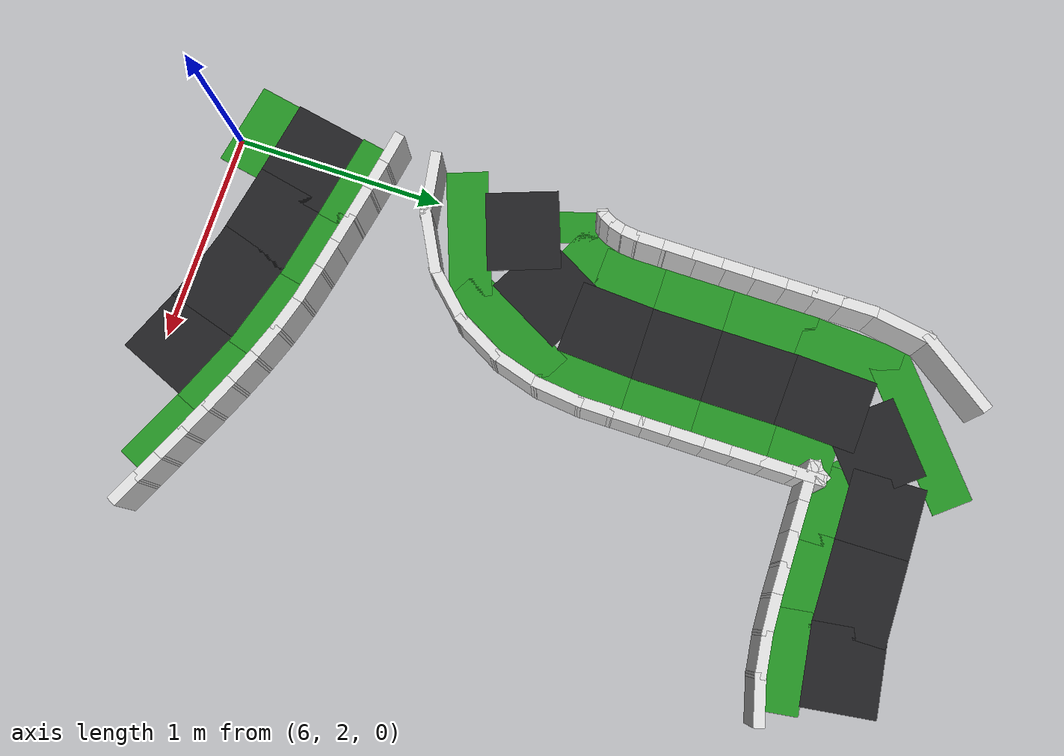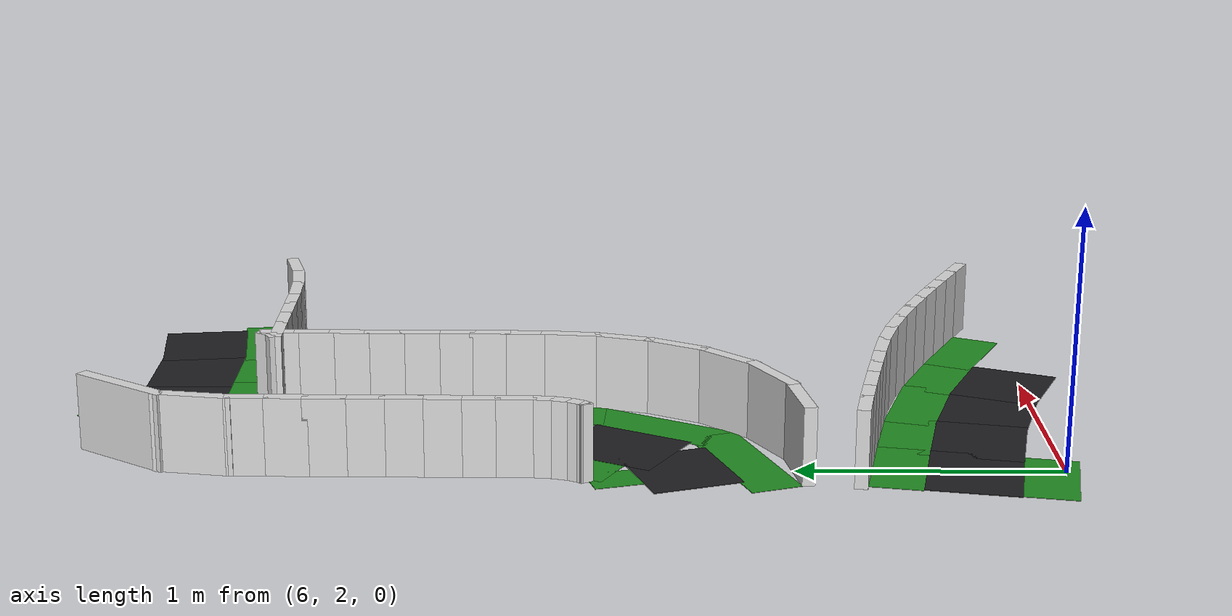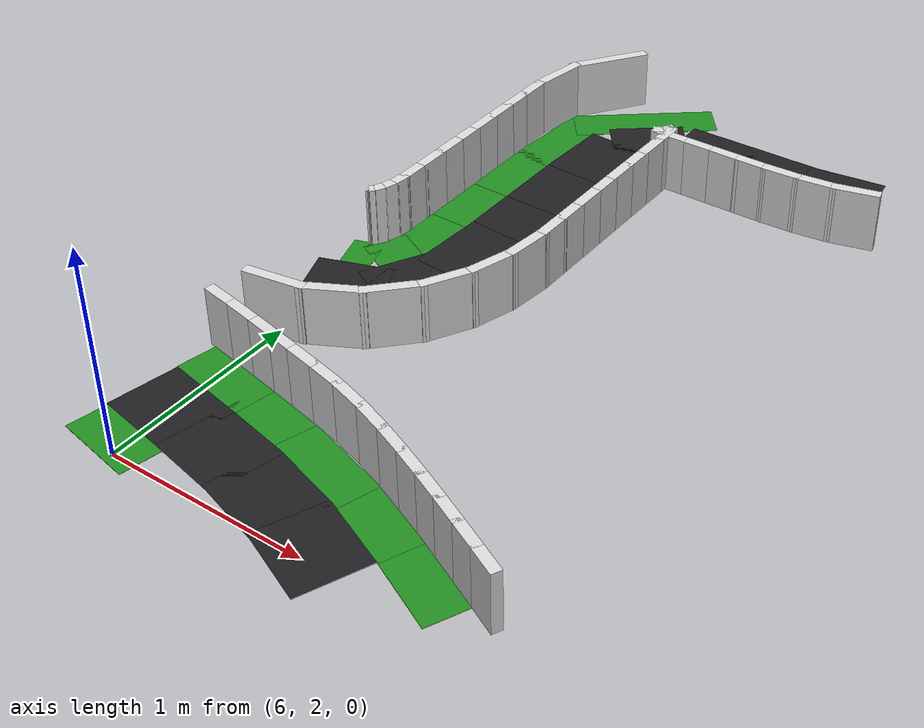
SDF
<sdf version="1.8">
 <world name="it_arena_track">
  <model name="it_arena_track_static">
   <static>true</static>
   <link name="surface_main_48">
    <pose>7.4886 5.4344 0.0015 0 0 -3.00326</pose>
    <collision name="surface_main_48_col">
     <geometry><box><size>0.3899 0.3500 0.0030</size></box></geometry>
    </collision>
    <visual name="surface_main_48_vis">
     <geometry><box><size>0.3899 0.3500 0.0030</size></box></geometry>
     <material><ambient>0.12 0.12 0.13 1</ambient><diffuse>0.12 0.12 0.13 1</diffuse></material>
    </visual>
   </link>
   <link name="surface_main_49">
    <pose>7.1408 5.4082 0.0015 0 0 -3.12609</pose>
    <collision name="surface_main_49_col">
     <geometry><box><size>0.4139 0.3500 0.0030</size></box></geometry>
    </collision>
    <visual name="surface_main_49_vis">
     <geometry><box><size>0.4139 0.3500 0.0030</size></box></geometry>
     <material><ambient>0.12 0.12 0.13 1</ambient><diffuse>0.12 0.12 0.13 1</diffuse></material>
    </visual>
   </link>
   <link name="surface_main_50">
    <pose>6.7909 5.4021 0.0015 0 0 -3.12223</pose>
    <collision name="surface_main_50_col">
     <geometry><box><size>0.3909 0.3500 0.0030</size></box></geometry>
    </collision>
    <visual name="surface_main_50_vis">
     <geometry><box><size>0.3909 0.3500 0.0030</size></box></geometry>
     <material><ambient>0.12 0.12 0.13 1</ambient><diffuse>0.12 0.12 0.13 1</diffuse></material>
    </visual>
   </link>
   <link name="surface_main_51">
    <pose>6.4899 5.2921 0.0015 0 0 -2.45833</pose>
    <collision name="surface_main_51_col">
     <geometry><box><size>0.3889 0.3500 0.0030</size></box></geometry>
    </collision>
    <visual name="surface_main_51_vis">
     <geometry><box><size>0.3889 0.3500 0.0030</size></box></geometry>
     <material><ambient>0.12 0.12 0.13 1</ambient><diffuse>0.12 0.12 0.13 1</diffuse></material>
    </visual>
   </link>
   <link name="surface_main_52">
    <pose>6.3519 5.0160 0.0015 0 0 -1.61126</pose>
    <collision name="surface_main_52_col">
     <geometry><box><size>0.3898 0.3500 0.0030</size></box></geometry>
    </collision>
    <visual name="surface_main_52_vis">
     <geometry><box><size>0.3898 0.3500 0.0030</size></box></geometry>
     <material><ambient>0.12 0.12 0.13 1</ambient><diffuse>0.12 0.12 0.13 1</diffuse></material>
    </visual>
   </link>
   <link name="surface_main_53">
    <pose>6.3450 4.6667 0.0015 0 0 -1.57080</pose>
    <collision name="surface_main_53_col">
     <geometry><box><size>0.4140 0.3500 0.0030</size></box></geometry>
    </collision>
    <visual name="surface_main_53_vis">
     <geometry><box><size>0.4140 0.3500 0.0030</size></box></geometry>
     <material><ambient>0.12 0.12 0.13 1</ambient><diffuse>0.12 0.12 0.13 1</diffuse></material>
    </visual>
   </link>
   <link name="surface_main_54">
    <pose>6.3450 4.3167 0.0015 0 0 -1.57080</pose>
    <collision name="surface_main_54_col">
     <geometry><box><size>0.3910 0.3500 0.0030</size></box></geometry>
    </collision>
    <visual name="surface_main_54_vis">
     <geometry><box><size>0.3910 0.3500 0.0030</size></box></geometry>
     <material><ambient>0.12 0.12 0.13 1</ambient><diffuse>0.12 0.12 0.13 1</diffuse></material>
    </visual>
   </link>
   <link name="surface_main_55">
    <pose>6.3351 3.9675 0.0015 0 0 -1.62589</pose>
    <collision name="surface_main_55_col">
     <geometry><box><size>0.4129 0.3500 0.0030</size></box></geometry>
    </collision>
    <visual name="surface_main_55_vis">
     <geometry><box><size>0.4129 0.3500 0.0030</size></box></geometry>
     <material><ambient>0.12 0.12 0.13 1</ambient><diffuse>0.12 0.12 0.13 1</diffuse></material>
    </visual>
   </link>
   <link name="surface_main_56">
    <pose>6.2413 3.6320 0.0015 0 0 -2.06382</pose>
    <collision name="surface_main_56_col">
     <geometry><box><size>0.4079 0.3500 0.0030</size></box></geometry>
    </collision>
    <visual name="surface_main_56_vis">
     <geometry><box><size>0.4079 0.3500 0.0030</size></box></geometry>
     <material><ambient>0.12 0.12 0.13 1</ambient><diffuse>0.12 0.12 0.13 1</diffuse></material>
    </visual>
   </link>
   <link name="surface_main_57">
    <pose>6.0016 3.4197 0.0015 0 0 -2.79601</pose>
    <collision name="surface_main_57_col">
     <geometry><box><size>0.3808 0.3500 0.0030</size></box></geometry>
    </collision>
    <visual name="surface_main_57_vis">
     <geometry><box><size>0.3808 0.3500 0.0030</size></box></geometry>
     <material><ambient>0.12 0.12 0.13 1</ambient><diffuse>0.12 0.12 0.13 1</diffuse></material>
    </visual>
   </link>
   <link name="surface_main_106">
    <pose>5.9840 2.3375 0.0015 0 0 -0.19005</pose>
    <collision name="surface_main_106_col">
     <geometry><box><size>0.4139 0.3500 0.0030</size></box></geometry>
    </collision>
    <visual name="surface_main_106_vis">
     <geometry><box><size>0.4139 0.3500 0.0030</size></box></geometry>
     <material><ambient>0.12 0.12 0.13 1</ambient><diffuse>0.12 0.12 0.13 1</diffuse></material>
    </visual>
   </link>
   <link name="surface_main_107">
    <pose>6.3271 2.2687 0.0015 0 0 -0.20604</pose>
    <collision name="surface_main_107_col">
     <geometry><box><size>0.3910 0.3500 0.0030</size></box></geometry>
    </collision>
    <visual name="surface_main_107_vis">
     <geometry><box><size>0.3910 0.3500 0.0030</size></box></geometry>
     <material><ambient>0.12 0.12 0.13 1</ambient><diffuse>0.12 0.12 0.13 1</diffuse></material>
    </visual>
   </link>
   <link name="surface_main_108">
    <pose>6.6656 2.1820 0.0015 0 0 -0.29323</pose>
    <collision name="surface_main_108_col">
     <geometry><box><size>0.4134 0.3500 0.0030</size></box></geometry>
    </collision>
    <visual name="surface_main_108_vis">
     <geometry><box><size>0.4134 0.3500 0.0030</size></box></geometry>
     <material><ambient>0.12 0.12 0.13 1</ambient><diffuse>0.12 0.12 0.13 1</diffuse></material>
    </visual>
   </link>
   <link name="surface_main_109">
    <pose>6.9943 2.0640 0.0015 0 0 -0.39922</pose>
    <collision name="surface_main_109_col">
     <geometry><box><size>0.3909 0.3500 0.0030</size></box></geometry>
    </collision>
    <visual name="surface_main_109_vis">
     <geometry><box><size>0.3909 0.3500 0.0030</size></box></geometry>
     <material><ambient>0.12 0.12 0.13 1</ambient><diffuse>0.12 0.12 0.13 1</diffuse></material>
    </visual>
   </link>
   <link name="grass_main_left_48">
    <pose>7.5335 5.1653 0.0010 0 0 -2.99863</pose>
    <collision name="grass_main_left_48_col">
     <geometry><box><size>0.4702 0.2000 0.0020</size></box></geometry>
    </collision>
    <visual name="grass_main_left_48_vis">
     <geometry><box><size>0.4702 0.2000 0.0020</size></box></geometry>
     <material><ambient>0.13 0.55 0.13 1</ambient><diffuse>0.13 0.55 0.13 1</diffuse></material>
    </visual>
   </link>
   <link name="grass_main_left_49">
    <pose>7.1477 5.1333 0.0010 0 0 -3.12590</pose>
    <collision name="grass_main_left_49_col">
     <geometry><box><size>0.4220 0.2000 0.0020</size></box></geometry>
    </collision>
    <visual name="grass_main_left_49_vis">
     <geometry><box><size>0.4220 0.2000 0.0020</size></box></geometry>
     <material><ambient>0.13 0.55 0.13 1</ambient><diffuse>0.13 0.55 0.13 1</diffuse></material>
    </visual>
   </link>
   <link name="grass_main_left_50">
    <pose>6.8045 5.1277 0.0010 0 0 -3.12412</pose>
    <collision name="grass_main_left_50_col">
     <geometry><box><size>0.3676 0.2000 0.0020</size></box></geometry>
    </collision>
    <visual name="grass_main_left_50_vis">
     <geometry><box><size>0.3676 0.2000 0.0020</size></box></geometry>
     <material><ambient>0.13 0.55 0.13 1</ambient><diffuse>0.13 0.55 0.13 1</diffuse></material>
    </visual>
   </link>
   <link name="grass_main_left_51">
    <pose>6.6333 5.1154 0.0010 0 0 -2.44620</pose>
    <collision name="grass_main_left_51_col">
     <geometry><box><size>0.0339 0.2000 0.0020</size></box></geometry>
    </collision>
    <visual name="grass_main_left_51_vis">
     <geometry><box><size>0.0339 0.2000 0.0020</size></box></geometry>
     <material><ambient>0.13 0.55 0.13 1</ambient><diffuse>0.13 0.55 0.13 1</diffuse></material>
    </visual>
   </link>
   <link name="grass_main_left_52">
    <pose>6.6210 4.9763 0.0010 0 0 -1.57856</pose>
    <collision name="grass_main_left_52_col">
     <geometry><box><size>0.2982 0.2000 0.0020</size></box></geometry>
    </collision>
    <visual name="grass_main_left_52_vis">
     <geometry><box><size>0.2982 0.2000 0.0020</size></box></geometry>
     <material><ambient>0.13 0.55 0.13 1</ambient><diffuse>0.13 0.55 0.13 1</diffuse></material>
    </visual>
   </link>
   <link name="grass_main_left_53">
    <pose>6.6200 4.6667 0.0010 0 0 -1.57080</pose>
    <collision name="grass_main_left_53_col">
     <geometry><box><size>0.4140 0.2000 0.0020</size></box></geometry>
    </collision>
    <visual name="grass_main_left_53_vis">
     <geometry><box><size>0.4140 0.2000 0.0020</size></box></geometry>
     <material><ambient>0.13 0.55 0.13 1</ambient><diffuse>0.13 0.55 0.13 1</diffuse></material>
    </visual>
   </link>
   <link name="grass_main_left_54">
    <pose>6.6200 4.3167 0.0010 0 0 -1.57080</pose>
    <collision name="grass_main_left_54_col">
     <geometry><box><size>0.3910 0.2000 0.0020</size></box></geometry>
    </collision>
    <visual name="grass_main_left_54_vis">
     <geometry><box><size>0.3910 0.2000 0.0020</size></box></geometry>
     <material><ambient>0.13 0.55 0.13 1</ambient><diffuse>0.13 0.55 0.13 1</diffuse></material>
    </visual>
   </link>
   <link name="grass_main_left_55">
    <pose>6.6069 3.9381 0.0010 0 0 -1.63334</pose>
    <collision name="grass_main_left_55_col">
     <geometry><box><size>0.4809 0.2000 0.0020</size></box></geometry>
    </collision>
    <visual name="grass_main_left_55_vis">
     <geometry><box><size>0.4809 0.2000 0.0020</size></box></geometry>
     <material><ambient>0.13 0.55 0.13 1</ambient><diffuse>0.13 0.55 0.13 1</diffuse></material>
    </visual>
   </link>
   <link name="grass_main_left_56">
    <pose>6.4691 3.5018 0.0010 0 0 -2.07217</pose>
    <collision name="grass_main_left_56_col">
     <geometry><box><size>0.5971 0.2000 0.0020</size></box></geometry>
    </collision>
    <visual name="grass_main_left_56_vis">
     <geometry><box><size>0.5971 0.2000 0.0020</size></box></geometry>
     <material><ambient>0.13 0.55 0.13 1</ambient><diffuse>0.13 0.55 0.13 1</diffuse></material>
    </visual>
   </link>
   <link name="grass_main_left_57">
    <pose>6.0961 3.1814 0.0010 0 0 -2.78400</pose>
    <collision name="grass_main_left_57_col">
     <geometry><box><size>0.6094 0.2000 0.0020</size></box></geometry>
    </collision>
    <visual name="grass_main_left_57_vis">
     <geometry><box><size>0.6094 0.2000 0.0020</size></box></geometry>
     <material><ambient>0.13 0.55 0.13 1</ambient><diffuse>0.13 0.55 0.13 1</diffuse></material>
    </visual>
   </link>
   <link name="grass_main_left_101">
    <pose>6.0351 2.6077 0.0010 0 0 -0.18998</pose>
    <collision name="grass_main_left_101_col">
     <geometry><box><size>0.4242 0.2000 0.0020</size></box></geometry>
    </collision>
    <visual name="grass_main_left_101_vis">
     <geometry><box><size>0.4242 0.2000 0.0020</size></box></geometry>
     <material><ambient>0.13 0.55 0.13 1</ambient><diffuse>0.13 0.55 0.13 1</diffuse></material>
    </visual>
   </link>
   <link name="grass_main_left_102">
    <pose>6.3835 2.5379 0.0010 0 0 -0.20604</pose>
    <collision name="grass_main_left_102_col">
     <geometry><box><size>0.3931 0.2000 0.0020</size></box></geometry>
    </collision>
    <visual name="grass_main_left_102_vis">
     <geometry><box><size>0.3931 0.2000 0.0020</size></box></geometry>
     <material><ambient>0.13 0.55 0.13 1</ambient><diffuse>0.13 0.55 0.13 1</diffuse></material>
    </visual>
   </link>
   <link name="grass_main_left_103">
    <pose>6.7434 2.4449 0.0010 0 0 -0.29267</pose>
    <collision name="grass_main_left_103_col">
     <geometry><box><size>0.4627 0.2000 0.0020</size></box></geometry>
    </collision>
    <visual name="grass_main_left_103_vis">
     <geometry><box><size>0.4627 0.2000 0.0020</size></box></geometry>
     <material><ambient>0.13 0.55 0.13 1</ambient><diffuse>0.13 0.55 0.13 1</diffuse></material>
    </visual>
   </link>
   <link name="grass_main_left_104">
    <pose>7.0999 2.3178 0.0010 0 0 -0.39901</pose>
    <collision name="grass_main_left_104_col">
     <geometry><box><size>0.4089 0.2000 0.0020</size></box></geometry>
    </collision>
    <visual name="grass_main_left_104_vis">
     <geometry><box><size>0.4089 0.2000 0.0020</size></box></geometry>
     <material><ambient>0.13 0.55 0.13 1</ambient><diffuse>0.13 0.55 0.13 1</diffuse></material>
    </visual>
   </link>
   <link name="grass_main_left_105">
    <pose>7.4297 2.1711 0.0010 0 0 -0.43736</pose>
    <collision name="grass_main_left_105_col">
     <geometry><box><size>0.4214 0.2000 0.0020</size></box></geometry>
    </collision>
    <visual name="grass_main_left_105_vis">
     <geometry><box><size>0.4214 0.2000 0.0020</size></box></geometry>
     <material><ambient>0.13 0.55 0.13 1</ambient><diffuse>0.13 0.55 0.13 1</diffuse></material>
    </visual>
   </link>
   <link name="grass_main_right_45">
    <pose>6.3464 5.4688 0.0010 0 0 -2.45888</pose>
    <collision name="grass_main_right_45_col">
     <geometry><box><size>0.7440 0.2000 0.0020</size></box></geometry>
    </collision>
    <visual name="grass_main_right_45_vis">
     <geometry><box><size>0.7440 0.2000 0.0020</size></box></geometry>
     <material><ambient>0.13 0.55 0.13 1</ambient><diffuse>0.13 0.55 0.13 1</diffuse></material>
    </visual>
   </link>
   <link name="grass_main_right_46">
    <pose>6.0827 5.0557 0.0010 0 0 -1.63151</pose>
    <collision name="grass_main_right_46_col">
     <geometry><box><size>0.4816 0.2000 0.0020</size></box></geometry>
    </collision>
    <visual name="grass_main_right_46_vis">
     <geometry><box><size>0.4816 0.2000 0.0020</size></box></geometry>
     <material><ambient>0.13 0.55 0.13 1</ambient><diffuse>0.13 0.55 0.13 1</diffuse></material>
    </visual>
   </link>
   <link name="grass_main_right_47">
    <pose>6.0700 4.6667 0.0010 0 0 -1.57080</pose>
    <collision name="grass_main_right_47_col">
     <geometry><box><size>0.4140 0.2000 0.0020</size></box></geometry>
    </collision>
    <visual name="grass_main_right_47_vis">
     <geometry><box><size>0.4140 0.2000 0.0020</size></box></geometry>
     <material><ambient>0.13 0.55 0.13 1</ambient><diffuse>0.13 0.55 0.13 1</diffuse></material>
    </visual>
   </link>
   <link name="grass_main_right_48">
    <pose>6.0700 4.3167 0.0010 0 0 -1.57080</pose>
    <collision name="grass_main_right_48_col">
     <geometry><box><size>0.3910 0.2000 0.0020</size></box></geometry>
    </collision>
    <visual name="grass_main_right_48_vis">
     <geometry><box><size>0.3910 0.2000 0.0020</size></box></geometry>
     <material><ambient>0.13 0.55 0.13 1</ambient><diffuse>0.13 0.55 0.13 1</diffuse></material>
    </visual>
   </link>
   <link name="grass_main_right_49">
    <pose>6.0633 3.9969 0.0010 0 0 -1.61551</pose>
    <collision name="grass_main_right_49_col">
     <geometry><box><size>0.3450 0.2000 0.0020</size></box></geometry>
    </collision>
    <visual name="grass_main_right_49_vis">
     <geometry><box><size>0.3450 0.2000 0.0020</size></box></geometry>
     <material><ambient>0.13 0.55 0.13 1</ambient><diffuse>0.13 0.55 0.13 1</diffuse></material>
    </visual>
   </link>
   <link name="grass_main_right_50">
    <pose>6.0135 3.7622 0.0010 0 0 -2.04102</pose>
    <collision name="grass_main_right_50_col">
     <geometry><box><size>0.2188 0.2000 0.0020</size></box></geometry>
    </collision>
    <visual name="grass_main_right_50_vis">
     <geometry><box><size>0.2188 0.2000 0.0020</size></box></geometry>
     <material><ambient>0.13 0.55 0.13 1</ambient><diffuse>0.13 0.55 0.13 1</diffuse></material>
    </visual>
   </link>
   <link name="grass_main_right_51">
    <pose>5.9071 3.6580 0.0010 0 0 -2.84406</pose>
    <collision name="grass_main_right_51_col">
     <geometry><box><size>0.1524 0.2000 0.0020</size></box></geometry>
    </collision>
    <visual name="grass_main_right_51_vis">
     <geometry><box><size>0.1524 0.2000 0.0020</size></box></geometry>
     <material><ambient>0.13 0.55 0.13 1</ambient><diffuse>0.13 0.55 0.13 1</diffuse></material>
    </visual>
   </link>
   <link name="grass_main_right_100">
    <pose>5.9329 2.0673 0.0010 0 0 -0.19013</pose>
    <collision name="grass_main_right_100_col">
     <geometry><box><size>0.4037 0.2000 0.0020</size></box></geometry>
    </collision>
    <visual name="grass_main_right_100_vis">
     <geometry><box><size>0.4037 0.2000 0.0020</size></box></geometry>
     <material><ambient>0.13 0.55 0.13 1</ambient><diffuse>0.13 0.55 0.13 1</diffuse></material>
    </visual>
   </link>
   <link name="walls_main_left_120">
    <pose>7.7308 5.0672 0.1500 0 0 -2.88377</pose>
    <collision name="walls_main_left_120_col">
     <geometry><box><size>0.2322 0.0500 0.3000</size></box></geometry>
     <surface><friction><ode><mu>0.8</mu><mu2>0.8</mu2></ode></friction></surface>
    </collision>
    <visual name="walls_main_left_120_vis">
     <geometry><box><size>0.2322 0.0500 0.3000</size></box></geometry>
     <material><ambient>0.85 0.85 0.85 1</ambient><diffuse>0.85 0.85 0.85 1</diffuse></material>
    </visual>
   </link>
   <link name="walls_main_left_121">
    <pose>7.5433 5.0297 0.1500 0 0 -3.01218</pose>
    <collision name="walls_main_left_121_col">
     <geometry><box><size>0.2085 0.0500 0.3000</size></box></geometry>
     <surface><friction><ode><mu>0.8</mu><mu2>0.8</mu2></ode></friction></surface>
    </collision>
    <visual name="walls_main_left_121_vis">
     <geometry><box><size>0.2085 0.0500 0.3000</size></box></geometry>
     <material><ambient>0.85 0.85 0.85 1</ambient><diffuse>0.85 0.85 0.85 1</diffuse></material>
    </visual>
   </link>
   <link name="walls_main_left_122">
    <pose>7.3712 5.0140 0.1500 0 0 -3.09235</pose>
    <collision name="walls_main_left_122_col">
     <geometry><box><size>0.1892 0.0500 0.3000</size></box></geometry>
     <surface><friction><ode><mu>0.8</mu><mu2>0.8</mu2></ode></friction></surface>
    </collision>
    <visual name="walls_main_left_122_vis">
     <geometry><box><size>0.1892 0.0500 0.3000</size></box></geometry>
     <material><ambient>0.85 0.85 0.85 1</ambient><diffuse>0.85 0.85 0.85 1</diffuse></material>
    </visual>
   </link>
   <link name="walls_main_left_123">
    <pose>7.2174 5.0088 0.1500 0 0 -3.12632</pose>
    <collision name="walls_main_left_123_col">
     <geometry><box><size>0.1647 0.0500 0.3000</size></box></geometry>
     <surface><friction><ode><mu>0.8</mu><mu2>0.8</mu2></ode></friction></surface>
    </collision>
    <visual name="walls_main_left_123_vis">
     <geometry><box><size>0.1647 0.0500 0.3000</size></box></geometry>
     <material><ambient>0.85 0.85 0.85 1</ambient><diffuse>0.85 0.85 0.85 1</diffuse></material>
    </visual>
   </link>
   <link name="walls_main_left_124">
    <pose>7.0757 5.0068 0.1500 0 0 -3.12888</pose>
    <collision name="walls_main_left_124_col">
     <geometry><box><size>0.1612 0.0500 0.3000</size></box></geometry>
     <surface><friction><ode><mu>0.8</mu><mu2>0.8</mu2></ode></friction></surface>
    </collision>
    <visual name="walls_main_left_124_vis">
     <geometry><box><size>0.1612 0.0500 0.3000</size></box></geometry>
     <material><ambient>0.85 0.85 0.85 1</ambient><diffuse>0.85 0.85 0.85 1</diffuse></material>
    </visual>
   </link>
   <link name="walls_main_left_125">
    <pose>6.9357 5.0051 0.1500 0 0 -3.12888</pose>
    <collision name="walls_main_left_125_col">
     <geometry><box><size>0.1608 0.0500 0.3000</size></box></geometry>
     <surface><friction><ode><mu>0.8</mu><mu2>0.8</mu2></ode></friction></surface>
    </collision>
    <visual name="walls_main_left_125_vis">
     <geometry><box><size>0.1608 0.0500 0.3000</size></box></geometry>
     <material><ambient>0.85 0.85 0.85 1</ambient><diffuse>0.85 0.85 0.85 1</diffuse></material>
    </visual>
   </link>
   <link name="walls_main_left_126">
    <pose>6.7961 5.0033 0.1500 0 0 -3.12847</pose>
    <collision name="walls_main_left_126_col">
     <geometry><box><size>0.1603 0.0500 0.3000</size></box></geometry>
     <surface><friction><ode><mu>0.8</mu><mu2>0.8</mu2></ode></friction></surface>
    </collision>
    <visual name="walls_main_left_126_vis">
     <geometry><box><size>0.1603 0.0500 0.3000</size></box></geometry>
     <material><ambient>0.85 0.85 0.85 1</ambient><diffuse>0.85 0.85 0.85 1</diffuse></material>
    </visual>
   </link>
   <link name="walls_main_left_127">
    <pose>6.7002 5.0029 0.1500 0 0 3.12035</pose>
    <collision name="walls_main_left_127_col">
     <geometry><box><size>0.0604 0.0500 0.3000</size></box></geometry>
     <surface><friction><ode><mu>0.8</mu><mu2>0.8</mu2></ode></friction></surface>
    </collision>
    <visual name="walls_main_left_127_vis">
     <geometry><box><size>0.0604 0.0500 0.3000</size></box></geometry>
     <material><ambient>0.85 0.85 0.85 1</ambient><diffuse>0.85 0.85 0.85 1</diffuse></material>
    </visual>
   </link>
   <link name="walls_main_left_128">
    <pose>6.6929 5.0143 0.1500 0 0 0.51901</pose>
    <collision name="walls_main_left_128_col">
     <geometry><box><size>0.0502 0.0500 0.3000</size></box></geometry>
     <surface><friction><ode><mu>0.8</mu><mu2>0.8</mu2></ode></friction></surface>
    </collision>
    <visual name="walls_main_left_128_vis">
     <geometry><box><size>0.0502 0.0500 0.3000</size></box></geometry>
     <material><ambient>0.85 0.85 0.85 1</ambient><diffuse>0.85 0.85 0.85 1</diffuse></material>
    </visual>
   </link>
   <link name="walls_main_left_129">
    <pose>6.7275 5.0490 0.1500 0 0 0.99361</pose>
    <collision name="walls_main_left_129_col">
     <geometry><box><size>0.0656 0.0500 0.3000</size></box></geometry>
     <surface><friction><ode><mu>0.8</mu><mu2>0.8</mu2></ode></friction></surface>
    </collision>
    <visual name="walls_main_left_129_vis">
     <geometry><box><size>0.0656 0.0500 0.3000</size></box></geometry>
     <material><ambient>0.85 0.85 0.85 1</ambient><diffuse>0.85 0.85 0.85 1</diffuse></material>
    </visual>
   </link>
   <link name="walls_main_left_130">
    <pose>6.7440 5.0675 0.1500 0 0 -1.38750</pose>
    <collision name="walls_main_left_130_col">
     <geometry><box><size>0.0128 0.0500 0.3000</size></box></geometry>
     <surface><friction><ode><mu>0.8</mu><mu2>0.8</mu2></ode></friction></surface>
    </collision>
    <visual name="walls_main_left_130_vis">
     <geometry><box><size>0.0128 0.0500 0.3000</size></box></geometry>
     <material><ambient>0.85 0.85 0.85 1</ambient><diffuse>0.85 0.85 0.85 1</diffuse></material>
    </visual>
   </link>
   <link name="walls_main_left_131">
    <pose>6.7450 4.9943 0.1500 0 0 -1.57120</pose>
    <collision name="walls_main_left_131_col">
     <geometry><box><size>0.1556 0.0500 0.3000</size></box></geometry>
     <surface><friction><ode><mu>0.8</mu><mu2>0.8</mu2></ode></friction></surface>
    </collision>
    <visual name="walls_main_left_131_vis">
     <geometry><box><size>0.1556 0.0500 0.3000</size></box></geometry>
     <material><ambient>0.85 0.85 0.85 1</ambient><diffuse>0.85 0.85 0.85 1</diffuse></material>
    </visual>
   </link>
   <link name="walls_main_left_132">
    <pose>6.7450 4.8567 0.1500 0 0 -1.57080</pose>
    <collision name="walls_main_left_132_col">
     <geometry><box><size>0.1610 0.0500 0.3000</size></box></geometry>
     <surface><friction><ode><mu>0.8</mu><mu2>0.8</mu2></ode></friction></surface>
    </collision>
    <visual name="walls_main_left_132_vis">
     <geometry><box><size>0.1610 0.0500 0.3000</size></box></geometry>
     <material><ambient>0.85 0.85 0.85 1</ambient><diffuse>0.85 0.85 0.85 1</diffuse></material>
    </visual>
   </link>
   <link name="walls_main_left_133">
    <pose>6.7450 4.7167 0.1500 0 0 -1.57080</pose>
    <collision name="walls_main_left_133_col">
     <geometry><box><size>0.1610 0.0500 0.3000</size></box></geometry>
     <surface><friction><ode><mu>0.8</mu><mu2>0.8</mu2></ode></friction></surface>
    </collision>
    <visual name="walls_main_left_133_vis">
     <geometry><box><size>0.1610 0.0500 0.3000</size></box></geometry>
     <material><ambient>0.85 0.85 0.85 1</ambient><diffuse>0.85 0.85 0.85 1</diffuse></material>
    </visual>
   </link>
   <link name="walls_main_left_134">
    <pose>6.7450 4.5767 0.1500 0 0 -1.57080</pose>
    <collision name="walls_main_left_134_col">
     <geometry><box><size>0.1610 0.0500 0.3000</size></box></geometry>
     <surface><friction><ode><mu>0.8</mu><mu2>0.8</mu2></ode></friction></surface>
    </collision>
    <visual name="walls_main_left_134_vis">
     <geometry><box><size>0.1610 0.0500 0.3000</size></box></geometry>
     <material><ambient>0.85 0.85 0.85 1</ambient><diffuse>0.85 0.85 0.85 1</diffuse></material>
    </visual>
   </link>
   <link name="walls_main_left_135">
    <pose>6.7450 4.4367 0.1500 0 0 -1.57080</pose>
    <collision name="walls_main_left_135_col">
     <geometry><box><size>0.1610 0.0500 0.3000</size></box></geometry>
     <surface><friction><ode><mu>0.8</mu><mu2>0.8</mu2></ode></friction></surface>
    </collision>
    <visual name="walls_main_left_135_vis">
     <geometry><box><size>0.1610 0.0500 0.3000</size></box></geometry>
     <material><ambient>0.85 0.85 0.85 1</ambient><diffuse>0.85 0.85 0.85 1</diffuse></material>
    </visual>
   </link>
   <link name="walls_main_left_136">
    <pose>6.7450 4.2967 0.1500 0 0 -1.57080</pose>
    <collision name="walls_main_left_136_col">
     <geometry><box><size>0.1610 0.0500 0.3000</size></box></geometry>
     <surface><friction><ode><mu>0.8</mu><mu2>0.8</mu2></ode></friction></surface>
    </collision>
    <visual name="walls_main_left_136_vis">
     <geometry><box><size>0.1610 0.0500 0.3000</size></box></geometry>
     <material><ambient>0.85 0.85 0.85 1</ambient><diffuse>0.85 0.85 0.85 1</diffuse></material>
    </visual>
   </link>
   <link name="walls_main_left_137">
    <pose>6.7450 4.1567 0.1500 0 0 -1.57080</pose>
    <collision name="walls_main_left_137_col">
     <geometry><box><size>0.1610 0.0500 0.3000</size></box></geometry>
     <surface><friction><ode><mu>0.8</mu><mu2>0.8</mu2></ode></friction></surface>
    </collision>
    <visual name="walls_main_left_137_vis">
     <geometry><box><size>0.1610 0.0500 0.3000</size></box></geometry>
     <material><ambient>0.85 0.85 0.85 1</ambient><diffuse>0.85 0.85 0.85 1</diffuse></material>
    </visual>
   </link>
   <link name="walls_main_left_138">
    <pose>6.7446 4.0124 0.1500 0 0 -1.57577</pose>
    <collision name="walls_main_left_138_col">
     <geometry><box><size>0.1711 0.0500 0.3000</size></box></geometry>
     <surface><friction><ode><mu>0.8</mu><mu2>0.8</mu2></ode></friction></surface>
    </collision>
    <visual name="walls_main_left_138_vis">
     <geometry><box><size>0.1711 0.0500 0.3000</size></box></geometry>
     <material><ambient>0.85 0.85 0.85 1</ambient><diffuse>0.85 0.85 0.85 1</diffuse></material>
    </visual>
   </link>
   <link name="walls_main_left_139">
    <pose>6.7328 3.8335 0.1500 0 0 -1.68001</pose>
    <collision name="walls_main_left_139_col">
     <geometry><box><size>0.2417 0.0500 0.3000</size></box></geometry>
     <surface><friction><ode><mu>0.8</mu><mu2>0.8</mu2></ode></friction></surface>
    </collision>
    <visual name="walls_main_left_139_vis">
     <geometry><box><size>0.2417 0.0500 0.3000</size></box></geometry>
     <material><ambient>0.85 0.85 0.85 1</ambient><diffuse>0.85 0.85 0.85 1</diffuse></material>
    </visual>
   </link>
   <link name="walls_main_left_140">
    <pose>6.6905 3.6257 0.1500 0 0 -1.86047</pose>
    <collision name="walls_main_left_140_col">
     <geometry><box><size>0.2481 0.0500 0.3000</size></box></geometry>
     <surface><friction><ode><mu>0.8</mu><mu2>0.8</mu2></ode></friction></surface>
    </collision>
    <visual name="walls_main_left_140_vis">
     <geometry><box><size>0.2481 0.0500 0.3000</size></box></geometry>
     <material><ambient>0.85 0.85 0.85 1</ambient><diffuse>0.85 0.85 0.85 1</diffuse></material>
    </visual>
   </link>
   <link name="walls_main_left_141">
    <pose>6.6040 3.4203 0.1500 0 0 -2.07120</pose>
    <collision name="walls_main_left_141_col">
     <geometry><box><size>0.2672 0.0500 0.3000</size></box></geometry>
     <surface><friction><ode><mu>0.8</mu><mu2>0.8</mu2></ode></friction></surface>
    </collision>
    <visual name="walls_main_left_141_vis">
     <geometry><box><size>0.2672 0.0500 0.3000</size></box></geometry>
     <material><ambient>0.85 0.85 0.85 1</ambient><diffuse>0.85 0.85 0.85 1</diffuse></material>
    </visual>
   </link>
   <link name="walls_main_left_142">
    <pose>6.4600 3.2264 0.1500 0 0 -2.33518</pose>
    <collision name="walls_main_left_142_col">
     <geometry><box><size>0.2933 0.0500 0.3000</size></box></geometry>
     <surface><friction><ode><mu>0.8</mu><mu2>0.8</mu2></ode></friction></surface>
    </collision>
    <visual name="walls_main_left_142_vis">
     <geometry><box><size>0.2933 0.0500 0.3000</size></box></geometry>
     <material><ambient>0.85 0.85 0.85 1</ambient><diffuse>0.85 0.85 0.85 1</diffuse></material>
    </visual>
   </link>
   <link name="walls_main_left_143">
    <pose>6.2524 3.0706 0.1500 0 0 -2.65100</pose>
    <collision name="walls_main_left_143_col">
     <geometry><box><size>0.3112 0.0500 0.3000</size></box></geometry>
     <surface><friction><ode><mu>0.8</mu><mu2>0.8</mu2></ode></friction></surface>
    </collision>
    <visual name="walls_main_left_143_vis">
     <geometry><box><size>0.3112 0.0500 0.3000</size></box></geometry>
     <material><ambient>0.85 0.85 0.85 1</ambient><diffuse>0.85 0.85 0.85 1</diffuse></material>
    </visual>
   </link>
   <link name="walls_main_left_144">
    <pose>6.0016 2.9853 0.1500 0 0 -2.97940</pose>
    <collision name="walls_main_left_144_col">
     <geometry><box><size>0.3063 0.0500 0.3000</size></box></geometry>
     <surface><friction><ode><mu>0.8</mu><mu2>0.8</mu2></ode></friction></surface>
    </collision>
    <visual name="walls_main_left_144_vis">
     <geometry><box><size>0.3063 0.0500 0.3000</size></box></geometry>
     <material><ambient>0.85 0.85 0.85 1</ambient><diffuse>0.85 0.85 0.85 1</diffuse></material>
    </visual>
   </link>
   <link name="walls_main_left_254">
    <pose>5.9063 2.7599 0.1500 0 0 -0.17424</pose>
    <collision name="walls_main_left_254_col">
     <geometry><box><size>0.1705 0.0500 0.3000</size></box></geometry>
     <surface><friction><ode><mu>0.8</mu><mu2>0.8</mu2></ode></friction></surface>
    </collision>
    <visual name="walls_main_left_254_vis">
     <geometry><box><size>0.1705 0.0500 0.3000</size></box></geometry>
     <material><ambient>0.85 0.85 0.85 1</ambient><diffuse>0.85 0.85 0.85 1</diffuse></material>
    </visual>
   </link>
   <link name="walls_main_left_255">
    <pose>6.0502 2.7333 0.1500 0 0 -0.19133</pose>
    <collision name="walls_main_left_255_col">
     <geometry><box><size>0.1661 0.0500 0.3000</size></box></geometry>
     <surface><friction><ode><mu>0.8</mu><mu2>0.8</mu2></ode></friction></surface>
    </collision>
    <visual name="walls_main_left_255_vis">
     <geometry><box><size>0.1661 0.0500 0.3000</size></box></geometry>
     <material><ambient>0.85 0.85 0.85 1</ambient><diffuse>0.85 0.85 0.85 1</diffuse></material>
    </visual>
   </link>
   <link name="walls_main_left_256">
    <pose>6.1912 2.7054 0.1500 0 0 -0.19974</pose>
    <collision name="walls_main_left_256_col">
     <geometry><box><size>0.1645 0.0500 0.3000</size></box></geometry>
     <surface><friction><ode><mu>0.8</mu><mu2>0.8</mu2></ode></friction></surface>
    </collision>
    <visual name="walls_main_left_256_vis">
     <geometry><box><size>0.1645 0.0500 0.3000</size></box></geometry>
     <material><ambient>0.85 0.85 0.85 1</ambient><diffuse>0.85 0.85 0.85 1</diffuse></material>
    </visual>
   </link>
   <link name="walls_main_left_257">
    <pose>6.3302 2.6769 0.1500 0 0 -0.20531</pose>
    <collision name="walls_main_left_257_col">
     <geometry><box><size>0.1618 0.0500 0.3000</size></box></geometry>
     <surface><friction><ode><mu>0.8</mu><mu2>0.8</mu2></ode></friction></surface>
    </collision>
    <visual name="walls_main_left_257_vis">
     <geometry><box><size>0.1618 0.0500 0.3000</size></box></geometry>
     <material><ambient>0.85 0.85 0.85 1</ambient><diffuse>0.85 0.85 0.85 1</diffuse></material>
    </visual>
   </link>
   <link name="walls_main_left_258">
    <pose>6.4676 2.6481 0.1500 0 0 -0.20689</pose>
    <collision name="walls_main_left_258_col">
     <geometry><box><size>0.1610 0.0500 0.3000</size></box></geometry>
     <surface><friction><ode><mu>0.8</mu><mu2>0.8</mu2></ode></friction></surface>
    </collision>
    <visual name="walls_main_left_258_vis">
     <geometry><box><size>0.1610 0.0500 0.3000</size></box></geometry>
     <material><ambient>0.85 0.85 0.85 1</ambient><diffuse>0.85 0.85 0.85 1</diffuse></material>
    </visual>
   </link>
   <link name="walls_main_left_259">
    <pose>6.6127 2.6162 0.1500 0 0 -0.22484</pose>
    <collision name="walls_main_left_259_col">
     <geometry><box><size>0.1808 0.0500 0.3000</size></box></geometry>
     <surface><friction><ode><mu>0.8</mu><mu2>0.8</mu2></ode></friction></surface>
    </collision>
    <visual name="walls_main_left_259_vis">
     <geometry><box><size>0.1808 0.0500 0.3000</size></box></geometry>
     <material><ambient>0.85 0.85 0.85 1</ambient><diffuse>0.85 0.85 0.85 1</diffuse></material>
    </visual>
   </link>
   <link name="walls_main_left_260">
    <pose>6.7702 2.5746 0.1500 0 0 -0.28996</pose>
    <collision name="walls_main_left_260_col">
     <geometry><box><size>0.1942 0.0500 0.3000</size></box></geometry>
     <surface><friction><ode><mu>0.8</mu><mu2>0.8</mu2></ode></friction></surface>
    </collision>
    <visual name="walls_main_left_260_vis">
     <geometry><box><size>0.1942 0.0500 0.3000</size></box></geometry>
     <material><ambient>0.85 0.85 0.85 1</ambient><diffuse>0.85 0.85 0.85 1</diffuse></material>
    </visual>
   </link>
   <link name="walls_main_left_261">
    <pose>6.9258 2.5232 0.1500 0 0 -0.34930</pose>
    <collision name="walls_main_left_261_col">
     <geometry><box><size>0.1827 0.0500 0.3000</size></box></geometry>
     <surface><friction><ode><mu>0.8</mu><mu2>0.8</mu2></ode></friction></surface>
    </collision>
    <visual name="walls_main_left_261_vis">
     <geometry><box><size>0.1827 0.0500 0.3000</size></box></geometry>
     <material><ambient>0.85 0.85 0.85 1</ambient><diffuse>0.85 0.85 0.85 1</diffuse></material>
    </visual>
   </link>
   <link name="walls_main_left_262">
    <pose>7.0706 2.4675 0.1500 0 0 -0.38605</pose>
    <collision name="walls_main_left_262_col">
     <geometry><box><size>0.1742 0.0500 0.3000</size></box></geometry>
     <surface><friction><ode><mu>0.8</mu><mu2>0.8</mu2></ode></friction></surface>
    </collision>
    <visual name="walls_main_left_262_vis">
     <geometry><box><size>0.1742 0.0500 0.3000</size></box></geometry>
     <material><ambient>0.85 0.85 0.85 1</ambient><diffuse>0.85 0.85 0.85 1</diffuse></material>
    </visual>
   </link>
   <link name="walls_main_left_263">
    <pose>7.2089 2.4093 0.1500 0 0 -0.41074</pose>
    <collision name="walls_main_left_263_col">
     <geometry><box><size>0.1709 0.0500 0.3000</size></box></geometry>
     <surface><friction><ode><mu>0.8</mu><mu2>0.8</mu2></ode></friction></surface>
    </collision>
    <visual name="walls_main_left_263_vis">
     <geometry><box><size>0.1709 0.0500 0.3000</size></box></geometry>
     <material><ambient>0.85 0.85 0.85 1</ambient><diffuse>0.85 0.85 0.85 1</diffuse></material>
    </visual>
   </link>
   <link name="walls_main_left_264">
    <pose>7.3437 2.3493 0.1500 0 0 -0.42705</pose>
    <collision name="walls_main_left_264_col">
     <geometry><box><size>0.1685 0.0500 0.3000</size></box></geometry>
     <surface><friction><ode><mu>0.8</mu><mu2>0.8</mu2></ode></friction></surface>
    </collision>
    <visual name="walls_main_left_264_vis">
     <geometry><box><size>0.1685 0.0500 0.3000</size></box></geometry>
     <material><ambient>0.85 0.85 0.85 1</ambient><diffuse>0.85 0.85 0.85 1</diffuse></material>
    </visual>
   </link>
   <link name="walls_main_left_265">
    <pose>7.4753 2.2886 0.1500 0 0 -0.43721</pose>
    <collision name="walls_main_left_265_col">
     <geometry><box><size>0.1648 0.0500 0.3000</size></box></geometry>
     <surface><friction><ode><mu>0.8</mu><mu2>0.8</mu2></ode></friction></surface>
    </collision>
    <visual name="walls_main_left_265_vis">
     <geometry><box><size>0.1648 0.0500 0.3000</size></box></geometry>
     <material><ambient>0.85 0.85 0.85 1</ambient><diffuse>0.85 0.85 0.85 1</diffuse></material>
    </visual>
   </link>
   <link name="walls_main_left_266">
    <pose>7.6040 2.2279 0.1500 0 0 -0.44439</pose>
    <collision name="walls_main_left_266_col">
     <geometry><box><size>0.1625 0.0500 0.3000</size></box></geometry>
     <surface><friction><ode><mu>0.8</mu><mu2>0.8</mu2></ode></friction></surface>
    </collision>
    <visual name="walls_main_left_266_vis">
     <geometry><box><size>0.1625 0.0500 0.3000</size></box></geometry>
     <material><ambient>0.85 0.85 0.85 1</ambient><diffuse>0.85 0.85 0.85 1</diffuse></material>
    </visual>
   </link>
   <link name="walls_main_left_267">
    <pose>7.7308 2.1673 0.1500 0 0 -0.44730</pose>
    <collision name="walls_main_left_267_col">
     <geometry><box><size>0.1610 0.0500 0.3000</size></box></geometry>
     <surface><friction><ode><mu>0.8</mu><mu2>0.8</mu2></ode></friction></surface>
    </collision>
    <visual name="walls_main_left_267_vis">
     <geometry><box><size>0.1610 0.0500 0.3000</size></box></geometry>
     <material><ambient>0.85 0.85 0.85 1</ambient><diffuse>0.85 0.85 0.85 1</diffuse></material>
    </visual>
   </link>
   <link name="walls_main_right_114">
    <pose>6.0943 5.4883 0.1500 0 0 -2.18181</pose>
    <collision name="walls_main_right_114_col">
     <geometry><box><size>0.4287 0.0500 0.3000</size></box></geometry>
     <surface><friction><ode><mu>0.8</mu><mu2>0.8</mu2></ode></friction></surface>
    </collision>
    <visual name="walls_main_right_114_vis">
     <geometry><box><size>0.4287 0.0500 0.3000</size></box></geometry>
     <material><ambient>0.85 0.85 0.85 1</ambient><diffuse>0.85 0.85 0.85 1</diffuse></material>
    </visual>
   </link>
   <link name="walls_main_right_115">
    <pose>5.9662 5.2034 0.1500 0 0 -1.72939</pose>
    <collision name="walls_main_right_115_col">
     <geometry><box><size>0.3078 0.0500 0.3000</size></box></geometry>
     <surface><friction><ode><mu>0.8</mu><mu2>0.8</mu2></ode></friction></surface>
    </collision>
    <visual name="walls_main_right_115_vis">
     <geometry><box><size>0.3078 0.0500 0.3000</size></box></geometry>
     <material><ambient>0.85 0.85 0.85 1</ambient><diffuse>0.85 0.85 0.85 1</diffuse></material>
    </visual>
   </link>
   <link name="walls_main_right_116">
    <pose>5.9451 4.9990 0.1500 0 0 -1.57154</pose>
    <collision name="walls_main_right_116_col">
     <geometry><box><size>0.1663 0.0500 0.3000</size></box></geometry>
     <surface><friction><ode><mu>0.8</mu><mu2>0.8</mu2></ode></friction></surface>
    </collision>
    <visual name="walls_main_right_116_vis">
     <geometry><box><size>0.1663 0.0500 0.3000</size></box></geometry>
     <material><ambient>0.85 0.85 0.85 1</ambient><diffuse>0.85 0.85 0.85 1</diffuse></material>
    </visual>
   </link>
   <link name="walls_main_right_117">
    <pose>5.9450 4.8567 0.1500 0 0 -1.57080</pose>
    <collision name="walls_main_right_117_col">
     <geometry><box><size>0.1610 0.0500 0.3000</size></box></geometry>
     <surface><friction><ode><mu>0.8</mu><mu2>0.8</mu2></ode></friction></surface>
    </collision>
    <visual name="walls_main_right_117_vis">
     <geometry><box><size>0.1610 0.0500 0.3000</size></box></geometry>
     <material><ambient>0.85 0.85 0.85 1</ambient><diffuse>0.85 0.85 0.85 1</diffuse></material>
    </visual>
   </link>
   <link name="walls_main_right_118">
    <pose>5.9450 4.7167 0.1500 0 0 -1.57080</pose>
    <collision name="walls_main_right_118_col">
     <geometry><box><size>0.1610 0.0500 0.3000</size></box></geometry>
     <surface><friction><ode><mu>0.8</mu><mu2>0.8</mu2></ode></friction></surface>
    </collision>
    <visual name="walls_main_right_118_vis">
     <geometry><box><size>0.1610 0.0500 0.3000</size></box></geometry>
     <material><ambient>0.85 0.85 0.85 1</ambient><diffuse>0.85 0.85 0.85 1</diffuse></material>
    </visual>
   </link>
   <link name="walls_main_right_119">
    <pose>5.9450 4.5767 0.1500 0 0 -1.57080</pose>
    <collision name="walls_main_right_119_col">
     <geometry><box><size>0.1610 0.0500 0.3000</size></box></geometry>
     <surface><friction><ode><mu>0.8</mu><mu2>0.8</mu2></ode></friction></surface>
    </collision>
    <visual name="walls_main_right_119_vis">
     <geometry><box><size>0.1610 0.0500 0.3000</size></box></geometry>
     <material><ambient>0.85 0.85 0.85 1</ambient><diffuse>0.85 0.85 0.85 1</diffuse></material>
    </visual>
   </link>
   <link name="walls_main_right_120">
    <pose>5.9450 4.4367 0.1500 0 0 -1.57080</pose>
    <collision name="walls_main_right_120_col">
     <geometry><box><size>0.1610 0.0500 0.3000</size></box></geometry>
     <surface><friction><ode><mu>0.8</mu><mu2>0.8</mu2></ode></friction></surface>
    </collision>
    <visual name="walls_main_right_120_vis">
     <geometry><box><size>0.1610 0.0500 0.3000</size></box></geometry>
     <material><ambient>0.85 0.85 0.85 1</ambient><diffuse>0.85 0.85 0.85 1</diffuse></material>
    </visual>
   </link>
   <link name="walls_main_right_121">
    <pose>5.9450 4.2967 0.1500 0 0 -1.57080</pose>
    <collision name="walls_main_right_121_col">
     <geometry><box><size>0.1610 0.0500 0.3000</size></box></geometry>
     <surface><friction><ode><mu>0.8</mu><mu2>0.8</mu2></ode></friction></surface>
    </collision>
    <visual name="walls_main_right_121_vis">
     <geometry><box><size>0.1610 0.0500 0.3000</size></box></geometry>
     <material><ambient>0.85 0.85 0.85 1</ambient><diffuse>0.85 0.85 0.85 1</diffuse></material>
    </visual>
   </link>
   <link name="walls_main_right_122">
    <pose>5.9450 4.1567 0.1500 0 0 -1.57080</pose>
    <collision name="walls_main_right_122_col">
     <geometry><box><size>0.1610 0.0500 0.3000</size></box></geometry>
     <surface><friction><ode><mu>0.8</mu><mu2>0.8</mu2></ode></friction></surface>
    </collision>
    <visual name="walls_main_right_122_vis">
     <geometry><box><size>0.1610 0.0500 0.3000</size></box></geometry>
     <material><ambient>0.85 0.85 0.85 1</ambient><diffuse>0.85 0.85 0.85 1</diffuse></material>
    </visual>
   </link>
   <link name="walls_main_right_123">
    <pose>5.9447 4.0212 0.1500 0 0 -1.57496</pose>
    <collision name="walls_main_right_123_col">
     <geometry><box><size>0.1509 0.0500 0.3000</size></box></geometry>
     <surface><friction><ode><mu>0.8</mu><mu2>0.8</mu2></ode></friction></surface>
    </collision>
    <visual name="walls_main_right_123_vis">
     <geometry><box><size>0.1509 0.0500 0.3000</size></box></geometry>
     <material><ambient>0.85 0.85 0.85 1</ambient><diffuse>0.85 0.85 0.85 1</diffuse></material>
    </visual>
   </link>
   <link name="walls_main_right_124">
    <pose>5.9407 3.9211 0.1500 0 0 -1.67814</pose>
    <collision name="walls_main_right_124_col">
     <geometry><box><size>0.0798 0.0500 0.3000</size></box></geometry>
     <surface><friction><ode><mu>0.8</mu><mu2>0.8</mu2></ode></friction></surface>
    </collision>
    <visual name="walls_main_right_124_vis">
     <geometry><box><size>0.0798 0.0500 0.3000</size></box></geometry>
     <material><ambient>0.85 0.85 0.85 1</ambient><diffuse>0.85 0.85 0.85 1</diffuse></material>
    </visual>
   </link>
   <link name="walls_main_right_125">
    <pose>5.9282 3.8560 0.1500 0 0 -1.85146</pose>
    <collision name="walls_main_right_125_col">
     <geometry><box><size>0.0732 0.0500 0.3000</size></box></geometry>
     <surface><friction><ode><mu>0.8</mu><mu2>0.8</mu2></ode></friction></surface>
    </collision>
    <visual name="walls_main_right_125_vis">
     <geometry><box><size>0.0732 0.0500 0.3000</size></box></geometry>
     <material><ambient>0.85 0.85 0.85 1</ambient><diffuse>0.85 0.85 0.85 1</diffuse></material>
    </visual>
   </link>
   <link name="walls_main_right_126">
    <pose>5.9085 3.8046 0.1500 0 0 -2.05406</pose>
    <collision name="walls_main_right_126_col">
     <geometry><box><size>0.0540 0.0500 0.3000</size></box></geometry>
     <surface><friction><ode><mu>0.8</mu><mu2>0.8</mu2></ode></friction></surface>
    </collision>
    <visual name="walls_main_right_126_vis">
     <geometry><box><size>0.0540 0.0500 0.3000</size></box></geometry>
     <material><ambient>0.85 0.85 0.85 1</ambient><diffuse>0.85 0.85 0.85 1</diffuse></material>
    </visual>
   </link>
   <link name="walls_main_right_127">
    <pose>5.8894 3.7751 0.1500 0 0 -2.32139</pose>
    <collision name="walls_main_right_127_col">
     <geometry><box><size>0.0275 0.0500 0.3000</size></box></geometry>
     <surface><friction><ode><mu>0.8</mu><mu2>0.8</mu2></ode></friction></surface>
    </collision>
    <visual name="walls_main_right_127_vis">
     <geometry><box><size>0.0275 0.0500 0.3000</size></box></geometry>
     <material><ambient>0.85 0.85 0.85 1</ambient><diffuse>0.85 0.85 0.85 1</diffuse></material>
    </visual>
   </link>
   <link name="walls_main_right_128">
    <pose>5.8775 3.7650 0.1500 0 0 -2.79913</pose>
    <collision name="walls_main_right_128_col">
     <geometry><box><size>0.0090 0.0500 0.3000</size></box></geometry>
     <surface><friction><ode><mu>0.8</mu><mu2>0.8</mu2></ode></friction></surface>
    </collision>
    <visual name="walls_main_right_128_vis">
     <geometry><box><size>0.0090 0.0500 0.3000</size></box></geometry>
     <material><ambient>0.85 0.85 0.85 1</ambient><diffuse>0.85 0.85 0.85 1</diffuse></material>
    </visual>
   </link>
  </model>
 </world>
</sdf>
